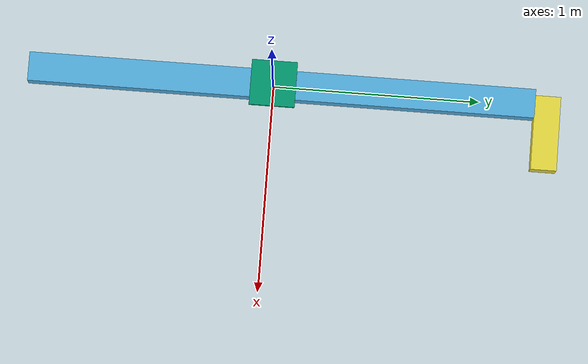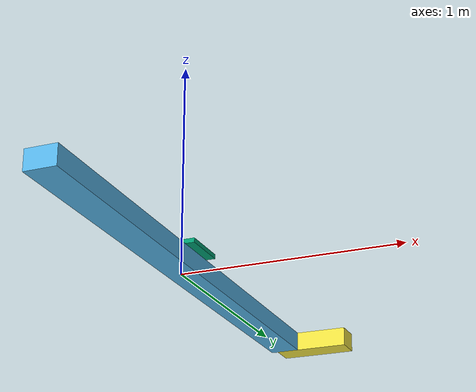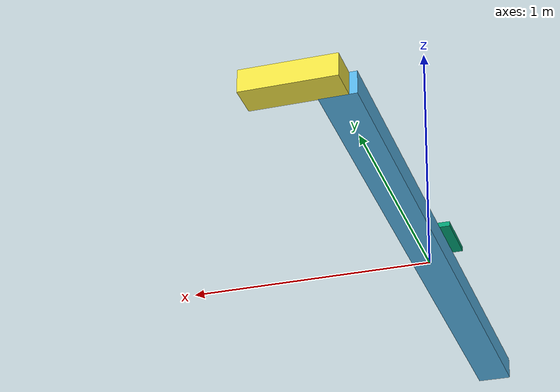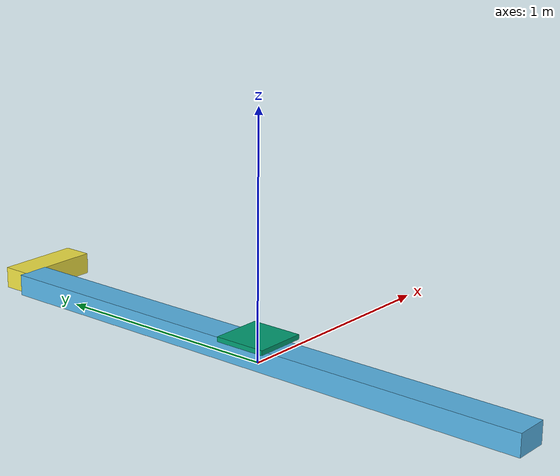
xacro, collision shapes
<?xml version="1.0"?>
<robot xmlns:xacro="http://wiki.ros.org/xacro" name="robotiq_gripper">
    <!-- Arguments -->
    <xacro:arg name="ip_address" default="192.168.7.2" />
    <xacro:arg name="use_fake_hardware" default="true" />

    <!-- Import macros -->
    <xacro:include filename="$(find vention_description)/urdf/vention_mo_lm_039_2295_macro.xacro"/>

    <link name="world" />
    <xacro:linear_actuator
        parent="world"
        prefix="vention_"
        ip_address="$(arg ip_address)"
        use_fake_hardware="$(arg use_fake_hardware)" >
        <origin xyz="0 0 0" rpy="0 0 0" />
    </xacro:linear_actuator>
</robot>

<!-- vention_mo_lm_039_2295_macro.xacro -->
<robot xmlns:xacro="http://wiki.ros.org/xacro">
  <xacro:macro name="linear_actuator" params="
    parent
    prefix
    *origin
    ip_address:=0.0.0.0
    use_fake_hardware:=false
    initial_positions:=${dict(carriage_joint=0.0)}">

    <!-- ROS2 Control -->
    <xacro:include filename="$(find vention_description)/urdf/vention_mo_lm_039_2295.ros2_control.xacro"/>
    <xacro:linear_actuator_ros2_control
      name="vention"
      prefix="${prefix}"
      use_fake_hardware="${use_fake_hardware}"
      ip_address="${ip_address}"
      initial_positions="${initial_positions}"/>

    <link name="${prefix}base_link">
      <visual>
        <geometry>
          <mesh filename="package://vention_description/meshes/visual/MO-LM-039-2295_frame.dae"/>
        </geometry>
        <origin xyz="0 0 0"/>
      </visual>

      <collision>
        <geometry>
          <box size="0.14 2.450 0.09"/>
        </geometry>
        <origin xyz="0 0.04 0.045"/>
      </collision>

      <inertial>
        <mass value="10"/>
        <inertia ixx="1.0" ixy="0.0" ixz="0.0" iyy="1.0" iyz="0.0" izz="1.0"/>
      </inertial>
    </link>

    <link name="${prefix}carriage_link">
      <visual>
        <geometry>
          <mesh filename="package://vention_description/meshes/visual/MO-LM-039-2295_carriage.dae"/>
        </geometry>
        <origin xyz="0 0 0"/>
      </visual>

      <collision>
        <geometry>
          <box size="0.22 0.22 0.02"/>
        </geometry>
        <origin xyz="0 0 -0.01"/>
      </collision>

      <inertial>
        <mass value="1"/>
        <inertia ixx="1.0" ixy="0.0" ixz="0.0" iyy="1.0" iyz="0.0" izz="1.0"/>
      </inertial>
    </link>

    <link name="${prefix}motor_link">
      <visual>
        <geometry>
          <mesh filename="package://vention_description/meshes/visual/MO-LM-039-2295_right_angle_motor.dae"/>
        </geometry>
        <origin xyz="0 0 0"/>
      </visual>

      <collision>
        <geometry>
          <box size="0.09 0.125 0.36"/>
        </geometry>
        <origin xyz="0 0.075 0.14"/>
      </collision>

      <inertial>
        <mass value="1"/>
        <inertia ixx="1.0" ixy="0.0" ixz="0.0" iyy="1.0" iyz="0.0" izz="1.0"/>
      </inertial>
    </link>

    <joint name="${prefix}base_joint" type="fixed">
      <parent link="${parent}"/>
      <child link="${prefix}base_link"/>
      <xacro:insert_block name="origin"/>
    </joint>

    <joint name="${prefix}motor_joint" type="fixed">
      <parent link="${prefix}base_link"/>
      <child link="${prefix}motor_link"/>
      <origin xyz="0 1.250 0.045" rpy="0 ${pi/2} 0"/>
    </joint>

    <joint name="${prefix}carriage_joint" type="prismatic">
      <axis xyz="0 1 0"/>
      <origin xyz="0.0 0.0 0.1125"/>
      <parent link="${prefix}base_link"/>
      <child link="${prefix}carriage_link"/>
      <limit effort="1000.0" lower="-1.0" upper="1.0" velocity="0.175"/>
      <dynamics damping="20.0" friction="500.0" />
    </joint>

  </xacro:macro>
</robot>
